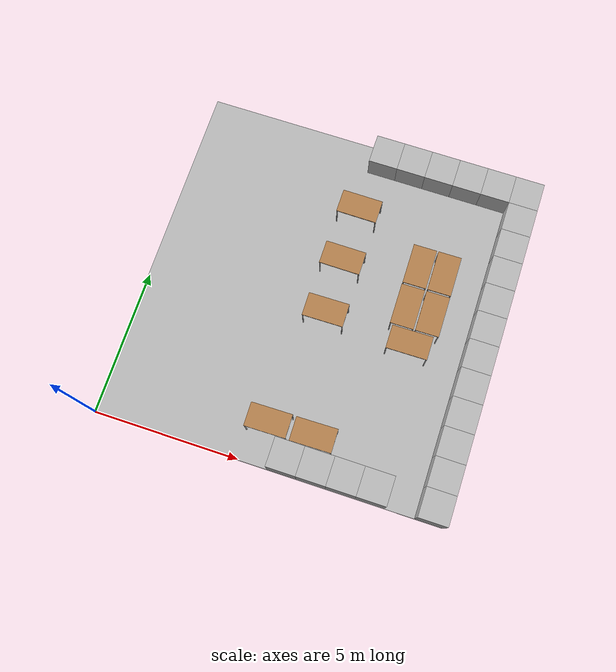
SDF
<sdf version="1.6">
 <world name="default">
  <model name="floor">
   <pose>5.94261 5.9862 -0.0625 0 -0 0</pose>
   <static>1</static>
   <link name="link">
    <collision name="collision"><geometry><box><size>12 12 0.125</size></box></geometry></collision>
    <visual name="visual"><geometry><box><size>12 12 0.125</size></box></geometry></visual>
   </link>
  </model>
  <model name="box_6_0">
   <pose>6.5 0.5 0.5 0 -0 0</pose>
   <static>1</static>
   <link name="link">
    <collision name="collision"><geometry><box><size>1 1 1</size></box></geometry></collision>
    <visual name="visual"><geometry><box><size>1 1 1</size></box></geometry></visual>
   </link>
  </model>
  <model name="box_6_11">
   <pose>6.5 11.5 0.5 0 -0 0</pose>
   <static>1</static>
   <link name="link">
    <collision name="collision"><geometry><box><size>1 1 1</size></box></geometry></collision>
    <visual name="visual"><geometry><box><size>1 1 1</size></box></geometry></visual>
   </link>
  </model>
  <model name="box_7_0">
   <pose>7.5 0.5 0.5 0 -0 0</pose>
   <static>1</static>
   <link name="link">
    <collision name="collision"><geometry><box><size>1 1 1</size></box></geometry></collision>
    <visual name="visual"><geometry><box><size>1 1 1</size></box></geometry></visual>
   </link>
  </model>
  <model name="box_7_11">
   <pose>7.5 11.5 0.5 0 -0 0</pose>
   <static>1</static>
   <link name="link">
    <collision name="collision"><geometry><box><size>1 1 1</size></box></geometry></collision>
    <visual name="visual"><geometry><box><size>1 1 1</size></box></geometry></visual>
   </link>
  </model>
  <model name="box_8_0">
   <pose>8.5 0.5 0.5 0 -0 0</pose>
   <static>1</static>
   <link name="link">
    <collision name="collision"><geometry><box><size>1 1 1</size></box></geometry></collision>
    <visual name="visual"><geometry><box><size>1 1 1</size></box></geometry></visual>
   </link>
  </model>
  <model name="box_8_11">
   <pose>8.5 11.5 0.5 0 -0 0</pose>
   <static>1</static>
   <link name="link">
    <collision name="collision"><geometry><box><size>1 1 1</size></box></geometry></collision>
    <visual name="visual"><geometry><box><size>1 1 1</size></box></geometry></visual>
   </link>
  </model>
  <model name="box_9_0">
   <pose>9.5 0.5 0.5 0 -0 0</pose>
   <static>1</static>
   <link name="link">
    <collision name="collision"><geometry><box><size>1 1 1</size></box></geometry></collision>
    <visual name="visual"><geometry><box><size>1 1 1</size></box></geometry></visual>
   </link>
  </model>
  <model name="box_9_11">
   <pose>9.5 11.5 0.5 0 -0 0</pose>
   <static>1</static>
   <link name="link">
    <collision name="collision"><geometry><box><size>1 1 1</size></box></geometry></collision>
    <visual name="visual"><geometry><box><size>1 1 1</size></box></geometry></visual>
   </link>
  </model>
  <model name="box_10_11">
   <pose>10.5 11.5 0.5 0 -0 0</pose>
   <static>1</static>
   <link name="link">
    <collision name="collision"><geometry><box><size>1 1 1</size></box></geometry></collision>
    <visual name="visual"><geometry><box><size>1 1 1</size></box></geometry></visual>
   </link>
  </model>
  <model name="box_11_0">
   <pose>11.5 0.5 0.5 0 -0 0</pose>
   <static>1</static>
   <link name="link">
    <collision name="collision"><geometry><box><size>1 1 1</size></box></geometry></collision>
    <visual name="visual"><geometry><box><size>1 1 1</size></box></geometry></visual>
   </link>
  </model>
  <model name="box_11_1">
   <pose>11.5 1.5 0.5 0 -0 0</pose>
   <static>1</static>
   <link name="link">
    <collision name="collision"><geometry><box><size>1 1 1</size></box></geometry></collision>
    <visual name="visual"><geometry><box><size>1 1 1</size></box></geometry></visual>
   </link>
  </model>
  <model name="box_11_2">
   <pose>11.5 2.5 0.5 0 -0 0</pose>
   <static>1</static>
   <link name="link">
    <collision name="collision"><geometry><box><size>1 1 1</size></box></geometry></collision>
    <visual name="visual"><geometry><box><size>1 1 1</size></box></geometry></visual>
   </link>
  </model>
  <model name="box_11_3">
   <pose>11.5 3.5 0.5 0 -0 0</pose>
   <static>1</static>
   <link name="link">
    <collision name="collision"><geometry><box><size>1 1 1</size></box></geometry></collision>
    <visual name="visual"><geometry><box><size>1 1 1</size></box></geometry></visual>
   </link>
  </model>
  <model name="box_11_4">
   <pose>11.5 4.5 0.5 0 -0 0</pose>
   <static>1</static>
   <link name="link">
    <collision name="collision"><geometry><box><size>1 1 1</size></box></geometry></collision>
    <visual name="visual"><geometry><box><size>1 1 1</size></box></geometry></visual>
   </link>
  </model>
  <model name="box_11_5">
   <pose>11.5 5.5 0.5 0 -0 0</pose>
   <static>1</static>
   <link name="link">
    <collision name="collision"><geometry><box><size>1 1 1</size></box></geometry></collision>
    <visual name="visual"><geometry><box><size>1 1 1</size></box></geometry></visual>
   </link>
  </model>
  <model name="box_11_6">
   <pose>11.5 6.5 0.5 0 -0 0</pose>
   <static>1</static>
   <link name="link">
    <collision name="collision"><geometry><box><size>1 1 1</size></box></geometry></collision>
    <visual name="visual"><geometry><box><size>1 1 1</size></box></geometry></visual>
   </link>
  </model>
  <model name="box_11_7">
   <pose>11.5 7.5 0.5 0 -0 0</pose>
   <static>1</static>
   <link name="link">
    <collision name="collision"><geometry><box><size>1 1 1</size></box></geometry></collision>
    <visual name="visual"><geometry><box><size>1 1 1</size></box></geometry></visual>
   </link>
  </model>
  <model name="box_11_8">
   <pose>11.5 8.5 0.5 0 -0 0</pose>
   <static>1</static>
   <link name="link">
    <collision name="collision"><geometry><box><size>1 1 1</size></box></geometry></collision>
    <visual name="visual"><geometry><box><size>1 1 1</size></box></geometry></visual>
   </link>
  </model>
  <model name="box_11_9">
   <pose>11.5 9.5 0.5 0 -0 0</pose>
   <static>1</static>
   <link name="link">
    <collision name="collision"><geometry><box><size>1 1 1</size></box></geometry></collision>
    <visual name="visual"><geometry><box><size>1 1 1</size></box></geometry></visual>
   </link>
  </model>
  <model name="box_11_10">
   <pose>11.5 10.5 0.5 0 -0 0</pose>
   <static>1</static>
   <link name="link">
    <collision name="collision"><geometry><box><size>1 1 1</size></box></geometry></collision>
    <visual name="visual"><geometry><box><size>1 1 1</size></box></geometry></visual>
   </link>
  </model>
  <model name="box_11_11">
   <pose>11.5 11.5 0.5 0 -0 0</pose>
   <static>1</static>
   <link name="link">
    <collision name="collision"><geometry><box><size>1 1 1</size></box></geometry></collision>
    <visual name="visual"><geometry><box><size>1 1 1</size></box></geometry></visual>
   </link>
  </model>
  <model name="table">
   <static>0</static>
   <link name="link">
    <collision name="surface">
     <pose>0 0 1 0 -0 0</pose>
     <geometry><box><size>1.5 0.8 0.03</size></box></geometry>
     <surface><friction><ode><mu>0.6</mu><mu2>0.6</mu2></ode></friction></surface>
    </collision>
    <visual name="visual1">
     <pose>0 0 1 0 -0 0</pose>
     <geometry><box><size>1.4 0.8 0.04</size></box></geometry>
     <material>
      <script><uri>file://media/materials/scripts/gazebo.material</uri><name>Gazebo/Wood</name></script>
     </material>
    </visual>
    <collision name="front_left_leg">
     <pose>0.68 0.38 0.5 0 -0 0</pose>
     <geometry><cylinder><radius>0.02</radius><length>1</length></cylinder></geometry>
    </collision>
    <visual name="front_left_leg">
     <pose>0.68 0.38 0.5 0 -0 0</pose>
     <geometry><cylinder><radius>0.02</radius><length>1</length></cylinder></geometry>
     <material>
      <script><uri>file://media/materials/scripts/gazebo.material</uri><name>Gazebo/Grey</name></script>
     </material>
    </visual>
    <collision name="front_right_leg">
     <pose>0.68 -0.38 0.5 0 -0 0</pose>
     <geometry><cylinder><radius>0.02</radius><length>1</length></cylinder></geometry>
    </collision>
    <visual name="front_right_leg">
     <pose>0.68 -0.38 0.5 0 -0 0</pose>
     <geometry><cylinder><radius>0.02</radius><length>1</length></cylinder></geometry>
     <material>
      <script><uri>file://media/materials/scripts/gazebo.material</uri><name>Gazebo/Grey</name></script>
     </material>
    </visual>
    <collision name="back_right_leg">
     <pose>-0.68 -0.38 0.5 0 -0 0</pose>
     <geometry><cylinder><radius>0.02</radius><length>1</length></cylinder></geometry>
    </collision>
    <visual name="back_right_leg">
     <pose>-0.68 -0.38 0.5 0 -0 0</pose>
     <geometry><cylinder><radius>0.02</radius><length>1</length></cylinder></geometry>
     <material>
      <script><uri>file://media/materials/scripts/gazebo.material</uri><name>Gazebo/Grey</name></script>
     </material>
    </visual>
    <collision name="back_left_leg">
     <pose>-0.68 0.38 0.5 0 -0 0</pose>
     <geometry><cylinder><radius>0.02</radius><length>1</length></cylinder></geometry>
    </collision>
    <visual name="back_left_leg">
     <pose>-0.68 0.38 0.5 0 -0 0</pose>
     <geometry><cylinder><radius>0.02</radius><length>1</length></cylinder></geometry>
     <material>
      <script><uri>file://media/materials/scripts/gazebo.material</uri><name>Gazebo/Grey</name></script>
     </material>
    </visual>
    <inertial>
     <inertia><ixx>1</ixx><ixy>0</ixy><ixz>0</ixz><iyy>1</iyy><iyz>0</iyz><izz>1</izz></inertia>
     <mass>1</mass>
    </inertial>
   </link>
   <pose>9.17846 5.24352 -7e-06 -0 -2e-06 0.011059</pose>
  </model>
  <model name="table_0">
   <static>0</static>
   <link name="link">
    <collision name="surface">
     <pose>0 0 1 0 -0 0</pose>
     <geometry><box><size>1.5 0.8 0.03</size></box></geometry>
     <surface><friction><ode><mu>0.6</mu><mu2>0.6</mu2></ode></friction></surface>
    </collision>
    <visual name="visual1">
     <pose>0 0 1 0 -0 0</pose>
     <geometry><box><size>1.4 0.8 0.04</size></box></geometry>
     <material>
      <script><uri>file://media/materials/scripts/gazebo.material</uri><name>Gazebo/Wood</name></script>
     </material>
    </visual>
    <collision name="front_left_leg">
     <pose>0.68 0.38 0.5 0 -0 0</pose>
     <geometry><cylinder><radius>0.02</radius><length>1</length></cylinder></geometry>
    </collision>
    <visual name="front_left_leg">
     <pose>0.68 0.38 0.5 0 -0 0</pose>
     <geometry><cylinder><radius>0.02</radius><length>1</length></cylinder></geometry>
     <material>
      <script><uri>file://media/materials/scripts/gazebo.material</uri><name>Gazebo/Grey</name></script>
     </material>
    </visual>
    <collision name="front_right_leg">
     <pose>0.68 -0.38 0.5 0 -0 0</pose>
     <geometry><cylinder><radius>0.02</radius><length>1</length></cylinder></geometry>
    </collision>
    <visual name="front_right_leg">
     <pose>0.68 -0.38 0.5 0 -0 0</pose>
     <geometry><cylinder><radius>0.02</radius><length>1</length></cylinder></geometry>
     <material>
      <script><uri>file://media/materials/scripts/gazebo.material</uri><name>Gazebo/Grey</name></script>
     </material>
    </visual>
    <collision name="back_right_leg">
     <pose>-0.68 -0.38 0.5 0 -0 0</pose>
     <geometry><cylinder><radius>0.02</radius><length>1</length></cylinder></geometry>
    </collision>
    <visual name="back_right_leg">
     <pose>-0.68 -0.38 0.5 0 -0 0</pose>
     <geometry><cylinder><radius>0.02</radius><length>1</length></cylinder></geometry>
     <material>
      <script><uri>file://media/materials/scripts/gazebo.material</uri><name>Gazebo/Grey</name></script>
     </material>
    </visual>
    <collision name="back_left_leg">
     <pose>-0.68 0.38 0.5 0 -0 0</pose>
     <geometry><cylinder><radius>0.02</radius><length>1</length></cylinder></geometry>
    </collision>
    <visual name="back_left_leg">
     <pose>-0.68 0.38 0.5 0 -0 0</pose>
     <geometry><cylinder><radius>0.02</radius><length>1</length></cylinder></geometry>
     <material>
      <script><uri>file://media/materials/scripts/gazebo.material</uri><name>Gazebo/Grey</name></script>
     </material>
    </visual>
    <inertial>
     <inertia><ixx>1</ixx><ixy>0</ixy><ixz>0</ixz><iyy>1</iyy><iyz>0</iyz><izz>1</izz></inertia>
     <mass>1</mass>
    </inertial>
   </link>
   <pose>9.62597 6.39854 -0.000245 0 0 -1.55974</pose>
  </model>
  <model name="table_0_clone">
   <static>0</static>
   <link name="link">
    <collision name="surface">
     <pose>0 0 1 0 -0 0</pose>
     <geometry><box><size>1.5 0.8 0.03</size></box></geometry>
     <surface><friction><ode><mu>0.6</mu><mu2>0.6</mu2></ode></friction></surface>
    </collision>
    <visual name="visual1">
     <pose>0 0 1 0 -0 0</pose>
     <geometry><box><size>1.4 0.8 0.04</size></box></geometry>
     <material>
      <script><uri>file://media/materials/scripts/gazebo.material</uri><name>Gazebo/Wood</name></script>
     </material>
    </visual>
    <collision name="front_left_leg">
     <pose>0.68 0.38 0.5 0 -0 0</pose>
     <geometry><cylinder><radius>0.02</radius><length>1</length></cylinder></geometry>
    </collision>
    <visual name="front_left_leg">
     <pose>0.68 0.38 0.5 0 -0 0</pose>
     <geometry><cylinder><radius>0.02</radius><length>1</length></cylinder></geometry>
     <material>
      <script><uri>file://media/materials/scripts/gazebo.material</uri><name>Gazebo/Grey</name></script>
     </material>
    </visual>
    <collision name="front_right_leg">
     <pose>0.68 -0.38 0.5 0 -0 0</pose>
     <geometry><cylinder><radius>0.02</radius><length>1</length></cylinder></geometry>
    </collision>
    <visual name="front_right_leg">
     <pose>0.68 -0.38 0.5 0 -0 0</pose>
     <geometry><cylinder><radius>0.02</radius><length>1</length></cylinder></geometry>
     <material>
      <script><uri>file://media/materials/scripts/gazebo.material</uri><name>Gazebo/Grey</name></script>
     </material>
    </visual>
    <collision name="back_right_leg">
     <pose>-0.68 -0.38 0.5 0 -0 0</pose>
     <geometry><cylinder><radius>0.02</radius><length>1</length></cylinder></geometry>
    </collision>
    <visual name="back_right_leg">
     <pose>-0.68 -0.38 0.5 0 -0 0</pose>
     <geometry><cylinder><radius>0.02</radius><length>1</length></cylinder></geometry>
     <material>
      <script><uri>file://media/materials/scripts/gazebo.material</uri><name>Gazebo/Grey</name></script>
     </material>
    </visual>
    <collision name="back_left_leg">
     <pose>-0.68 0.38 0.5 0 -0 0</pose>
     <geometry><cylinder><radius>0.02</radius><length>1</length></cylinder></geometry>
    </collision>
    <visual name="back_left_leg">
     <pose>-0.68 0.38 0.5 0 -0 0</pose>
     <geometry><cylinder><radius>0.02</radius><length>1</length></cylinder></geometry>
     <material>
      <script><uri>file://media/materials/scripts/gazebo.material</uri><name>Gazebo/Grey</name></script>
     </material>
    </visual>
    <inertial>
     <inertia><ixx>1</ixx><ixy>0</ixy><ixz>0</ixz><iyy>1</iyy><iyz>0</iyz><izz>1</izz></inertia>
     <mass>1</mass>
    </inertial>
   </link>
   <pose>8.76763 6.38905 -1e-06 0 -1e-06 -1.55973</pose>
  </model>
  <model name="table_0_clone_clone">
   <static>0</static>
   <link name="link">
    <collision name="surface">
     <pose>0 0 1 0 -0 0</pose>
     <geometry><box><size>1.5 0.8 0.03</size></box></geometry>
     <surface><friction><ode><mu>0.6</mu><mu2>0.6</mu2></ode></friction></surface>
    </collision>
    <visual name="visual1">
     <pose>0 0 1 0 -0 0</pose>
     <geometry><box><size>1.4 0.8 0.04</size></box></geometry>
     <material>
      <script><uri>file://media/materials/scripts/gazebo.material</uri><name>Gazebo/Wood</name></script>
     </material>
    </visual>
    <collision name="front_left_leg">
     <pose>0.68 0.38 0.5 0 -0 0</pose>
     <geometry><cylinder><radius>0.02</radius><length>1</length></cylinder></geometry>
    </collision>
    <visual name="front_left_leg">
     <pose>0.68 0.38 0.5 0 -0 0</pose>
     <geometry><cylinder><radius>0.02</radius><length>1</length></cylinder></geometry>
     <material>
      <script><uri>file://media/materials/scripts/gazebo.material</uri><name>Gazebo/Grey</name></script>
     </material>
    </visual>
    <collision name="front_right_leg">
     <pose>0.68 -0.38 0.5 0 -0 0</pose>
     <geometry><cylinder><radius>0.02</radius><length>1</length></cylinder></geometry>
    </collision>
    <visual name="front_right_leg">
     <pose>0.68 -0.38 0.5 0 -0 0</pose>
     <geometry><cylinder><radius>0.02</radius><length>1</length></cylinder></geometry>
     <material>
      <script><uri>file://media/materials/scripts/gazebo.material</uri><name>Gazebo/Grey</name></script>
     </material>
    </visual>
    <collision name="back_right_leg">
     <pose>-0.68 -0.38 0.5 0 -0 0</pose>
     <geometry><cylinder><radius>0.02</radius><length>1</length></cylinder></geometry>
    </collision>
    <visual name="back_right_leg">
     <pose>-0.68 -0.38 0.5 0 -0 0</pose>
     <geometry><cylinder><radius>0.02</radius><length>1</length></cylinder></geometry>
     <material>
      <script><uri>file://media/materials/scripts/gazebo.material</uri><name>Gazebo/Grey</name></script>
     </material>
    </visual>
    <collision name="back_left_leg">
     <pose>-0.68 0.38 0.5 0 -0 0</pose>
     <geometry><cylinder><radius>0.02</radius><length>1</length></cylinder></geometry>
    </collision>
    <visual name="back_left_leg">
     <pose>-0.68 0.38 0.5 0 -0 0</pose>
     <geometry><cylinder><radius>0.02</radius><length>1</length></cylinder></geometry>
     <material>
      <script><uri>file://media/materials/scripts/gazebo.material</uri><name>Gazebo/Grey</name></script>
     </material>
    </visual>
    <inertial>
     <inertia><ixx>1</ixx><ixy>0</ixy><ixz>0</ixz><iyy>1</iyy><iyz>0</iyz><izz>1</izz></inertia>
     <mass>1</mass>
    </inertial>
   </link>
   <pose>9.61633 7.82775 0.015104 3e-06 -0.021577 -1.55974</pose>
  </model>
  <model name="table_0_clone_clone_0">
   <static>0</static>
   <link name="link">
    <collision name="surface">
     <pose>0 0 1 0 -0 0</pose>
     <geometry><box><size>1.5 0.8 0.03</size></box></geometry>
     <surface><friction><ode><mu>0.6</mu><mu2>0.6</mu2></ode></friction></surface>
    </collision>
    <visual name="visual1">
     <pose>0 0 1 0 -0 0</pose>
     <geometry><box><size>1.4 0.8 0.04</size></box></geometry>
     <material>
      <script><uri>file://media/materials/scripts/gazebo.material</uri><name>Gazebo/Wood</name></script>
     </material>
    </visual>
    <collision name="front_left_leg">
     <pose>0.68 0.38 0.5 0 -0 0</pose>
     <geometry><cylinder><radius>0.02</radius><length>1</length></cylinder></geometry>
    </collision>
    <visual name="front_left_leg">
     <pose>0.68 0.38 0.5 0 -0 0</pose>
     <geometry><cylinder><radius>0.02</radius><length>1</length></cylinder></geometry>
     <material>
      <script><uri>file://media/materials/scripts/gazebo.material</uri><name>Gazebo/Grey</name></script>
     </material>
    </visual>
    <collision name="front_right_leg">
     <pose>0.68 -0.38 0.5 0 -0 0</pose>
     <geometry><cylinder><radius>0.02</radius><length>1</length></cylinder></geometry>
    </collision>
    <visual name="front_right_leg">
     <pose>0.68 -0.38 0.5 0 -0 0</pose>
     <geometry><cylinder><radius>0.02</radius><length>1</length></cylinder></geometry>
     <material>
      <script><uri>file://media/materials/scripts/gazebo.material</uri><name>Gazebo/Grey</name></script>
     </material>
    </visual>
    <collision name="back_right_leg">
     <pose>-0.68 -0.38 0.5 0 -0 0</pose>
     <geometry><cylinder><radius>0.02</radius><length>1</length></cylinder></geometry>
    </collision>
    <visual name="back_right_leg">
     <pose>-0.68 -0.38 0.5 0 -0 0</pose>
     <geometry><cylinder><radius>0.02</radius><length>1</length></cylinder></geometry>
     <material>
      <script><uri>file://media/materials/scripts/gazebo.material</uri><name>Gazebo/Grey</name></script>
     </material>
    </visual>
    <collision name="back_left_leg">
     <pose>-0.68 0.38 0.5 0 -0 0</pose>
     <geometry><cylinder><radius>0.02</radius><length>1</length></cylinder></geometry>
    </collision>
    <visual name="back_left_leg">
     <pose>-0.68 0.38 0.5 0 -0 0</pose>
     <geometry><cylinder><radius>0.02</radius><length>1</length></cylinder></geometry>
     <material>
      <script><uri>file://media/materials/scripts/gazebo.material</uri><name>Gazebo/Grey</name></script>
     </material>
    </visual>
    <inertial>
     <inertia><ixx>1</ixx><ixy>0</ixy><ixz>0</ixz><iyy>1</iyy><iyz>0</iyz><izz>1</izz></inertia>
     <mass>1</mass>
    </inertial>
   </link>
   <pose>8.76187 7.8183 0.015107 -0 -0.021583 -1.55974</pose>
  </model>
  <model name="table_clone">
   <static>0</static>
   <link name="link">
    <collision name="surface">
     <pose>0 0 1 0 -0 0</pose>
     <geometry><box><size>1.5 0.8 0.03</size></box></geometry>
     <surface><friction><ode><mu>0.6</mu><mu2>0.6</mu2></ode></friction></surface>
    </collision>
    <visual name="visual1">
     <pose>0 0 1 0 -0 0</pose>
     <geometry><box><size>1.4 0.8 0.04</size></box></geometry>
     <material>
      <script><uri>file://media/materials/scripts/gazebo.material</uri><name>Gazebo/Wood</name></script>
     </material>
    </visual>
    <collision name="front_left_leg">
     <pose>0.68 0.38 0.5 0 -0 0</pose>
     <geometry><cylinder><radius>0.02</radius><length>1</length></cylinder></geometry>
    </collision>
    <visual name="front_left_leg">
     <pose>0.68 0.38 0.5 0 -0 0</pose>
     <geometry><cylinder><radius>0.02</radius><length>1</length></cylinder></geometry>
     <material>
      <script><uri>file://media/materials/scripts/gazebo.material</uri><name>Gazebo/Grey</name></script>
     </material>
    </visual>
    <collision name="front_right_leg">
     <pose>0.68 -0.38 0.5 0 -0 0</pose>
     <geometry><cylinder><radius>0.02</radius><length>1</length></cylinder></geometry>
    </collision>
    <visual name="front_right_leg">
     <pose>0.68 -0.38 0.5 0 -0 0</pose>
     <geometry><cylinder><radius>0.02</radius><length>1</length></cylinder></geometry>
     <material>
      <script><uri>file://media/materials/scripts/gazebo.material</uri><name>Gazebo/Grey</name></script>
     </material>
    </visual>
    <collision name="back_right_leg">
     <pose>-0.68 -0.38 0.5 0 -0 0</pose>
     <geometry><cylinder><radius>0.02</radius><length>1</length></cylinder></geometry>
    </collision>
    <visual name="back_right_leg">
     <pose>-0.68 -0.38 0.5 0 -0 0</pose>
     <geometry><cylinder><radius>0.02</radius><length>1</length></cylinder></geometry>
     <material>
      <script><uri>file://media/materials/scripts/gazebo.material</uri><name>Gazebo/Grey</name></script>
     </material>
    </visual>
    <collision name="back_left_leg">
     <pose>-0.68 0.38 0.5 0 -0 0</pose>
     <geometry><cylinder><radius>0.02</radius><length>1</length></cylinder></geometry>
    </collision>
    <visual name="back_left_leg">
     <pose>-0.68 0.38 0.5 0 -0 0</pose>
     <geometry><cylinder><radius>0.02</radius><length>1</length></cylinder></geometry>
     <material>
      <script><uri>file://media/materials/scripts/gazebo.material</uri><name>Gazebo/Grey</name></script>
     </material>
    </visual>
    <inertial>
     <inertia><ixx>1</ixx><ixy>0</ixy><ixz>0</ixz><iyy>1</iyy><iyz>0</iyz><izz>1</izz></inertia>
     <mass>1</mass>
    </inertial>
   </link>
   <pose>6.23597 5.44554 0 0 -0 0.012441</pose>
  </model>
  <model name="table_clone_0_clone_0">
   <static>0</static>
   <link name="link">
    <collision name="surface">
     <pose>0 0 1 0 -0 0</pose>
     <geometry><box><size>1.5 0.8 0.03</size></box></geometry>
     <surface><friction><ode><mu>0.6</mu><mu2>0.6</mu2></ode></friction></surface>
    </collision>
    <visual name="visual1">
     <pose>0 0 1 0 -0 0</pose>
     <geometry><box><size>1.4 0.8 0.04</size></box></geometry>
     <material>
      <script><uri>file://media/materials/scripts/gazebo.material</uri><name>Gazebo/Wood</name></script>
     </material>
    </visual>
    <collision name="front_left_leg">
     <pose>0.68 0.38 0.5 0 -0 0</pose>
     <geometry><cylinder><radius>0.02</radius><length>1</length></cylinder></geometry>
    </collision>
    <visual name="front_left_leg">
     <pose>0.68 0.38 0.5 0 -0 0</pose>
     <geometry><cylinder><radius>0.02</radius><length>1</length></cylinder></geometry>
     <material>
      <script><uri>file://media/materials/scripts/gazebo.material</uri><name>Gazebo/Grey</name></script>
     </material>
    </visual>
    <collision name="front_right_leg">
     <pose>0.68 -0.38 0.5 0 -0 0</pose>
     <geometry><cylinder><radius>0.02</radius><length>1</length></cylinder></geometry>
    </collision>
    <visual name="front_right_leg">
     <pose>0.68 -0.38 0.5 0 -0 0</pose>
     <geometry><cylinder><radius>0.02</radius><length>1</length></cylinder></geometry>
     <material>
      <script><uri>file://media/materials/scripts/gazebo.material</uri><name>Gazebo/Grey</name></script>
     </material>
    </visual>
    <collision name="back_right_leg">
     <pose>-0.68 -0.38 0.5 0 -0 0</pose>
     <geometry><cylinder><radius>0.02</radius><length>1</length></cylinder></geometry>
    </collision>
    <visual name="back_right_leg">
     <pose>-0.68 -0.38 0.5 0 -0 0</pose>
     <geometry><cylinder><radius>0.02</radius><length>1</length></cylinder></geometry>
     <material>
      <script><uri>file://media/materials/scripts/gazebo.material</uri><name>Gazebo/Grey</name></script>
     </material>
    </visual>
    <collision name="back_left_leg">
     <pose>-0.68 0.38 0.5 0 -0 0</pose>
     <geometry><cylinder><radius>0.02</radius><length>1</length></cylinder></geometry>
    </collision>
    <visual name="back_left_leg">
     <pose>-0.68 0.38 0.5 0 -0 0</pose>
     <geometry><cylinder><radius>0.02</radius><length>1</length></cylinder></geometry>
     <material>
      <script><uri>file://media/materials/scripts/gazebo.material</uri><name>Gazebo/Grey</name></script>
     </material>
    </visual>
    <inertial>
     <inertia><ixx>1</ixx><ixy>0</ixy><ixz>0</ixz><iyy>1</iyy><iyz>0</iyz><izz>1</izz></inertia>
     <mass>1</mass>
    </inertial>
   </link>
   <pose>6.21494 7.34049 -3e-06 2e-06 -4e-06 -0.005891</pose>
  </model>
  <model name="table_clone_0_clone_2">
   <static>0</static>
   <link name="link">
    <collision name="surface">
     <pose>0 0 1 0 -0 0</pose>
     <geometry><box><size>1.5 0.8 0.03</size></box></geometry>
     <surface><friction><ode><mu>0.6</mu><mu2>0.6</mu2></ode></friction></surface>
    </collision>
    <visual name="visual1">
     <pose>0 0 1 0 -0 0</pose>
     <geometry><box><size>1.4 0.8 0.04</size></box></geometry>
     <material>
      <script><uri>file://media/materials/scripts/gazebo.material</uri><name>Gazebo/Wood</name></script>
     </material>
    </visual>
    <collision name="front_left_leg">
     <pose>0.68 0.38 0.5 0 -0 0</pose>
     <geometry><cylinder><radius>0.02</radius><length>1</length></cylinder></geometry>
    </collision>
    <visual name="front_left_leg">
     <pose>0.68 0.38 0.5 0 -0 0</pose>
     <geometry><cylinder><radius>0.02</radius><length>1</length></cylinder></geometry>
     <material>
      <script><uri>file://media/materials/scripts/gazebo.material</uri><name>Gazebo/Grey</name></script>
     </material>
    </visual>
    <collision name="front_right_leg">
     <pose>0.68 -0.38 0.5 0 -0 0</pose>
     <geometry><cylinder><radius>0.02</radius><length>1</length></cylinder></geometry>
    </collision>
    <visual name="front_right_leg">
     <pose>0.68 -0.38 0.5 0 -0 0</pose>
     <geometry><cylinder><radius>0.02</radius><length>1</length></cylinder></geometry>
     <material>
      <script><uri>file://media/materials/scripts/gazebo.material</uri><name>Gazebo/Grey</name></script>
     </material>
    </visual>
    <collision name="back_right_leg">
     <pose>-0.68 -0.38 0.5 0 -0 0</pose>
     <geometry><cylinder><radius>0.02</radius><length>1</length></cylinder></geometry>
    </collision>
    <visual name="back_right_leg">
     <pose>-0.68 -0.38 0.5 0 -0 0</pose>
     <geometry><cylinder><radius>0.02</radius><length>1</length></cylinder></geometry>
     <material>
      <script><uri>file://media/materials/scripts/gazebo.material</uri><name>Gazebo/Grey</name></script>
     </material>
    </visual>
    <collision name="back_left_leg">
     <pose>-0.68 0.38 0.5 0 -0 0</pose>
     <geometry><cylinder><radius>0.02</radius><length>1</length></cylinder></geometry>
    </collision>
    <visual name="back_left_leg">
     <pose>-0.68 0.38 0.5 0 -0 0</pose>
     <geometry><cylinder><radius>0.02</radius><length>1</length></cylinder></geometry>
     <material>
      <script><uri>file://media/materials/scripts/gazebo.material</uri><name>Gazebo/Grey</name></script>
     </material>
    </visual>
    <inertial>
     <inertia><ixx>1</ixx><ixy>0</ixy><ixz>0</ixz><iyy>1</iyy><iyz>0</iyz><izz>1</izz></inertia>
     <mass>1</mass>
    </inertial>
   </link>
   <pose>6.1956 9.27717 -2e-06 0 0 -0.006092</pose>
  </model>
  <model name="table_clone_0_clone_clone_1">
   <static>0</static>
   <link name="link">
    <collision name="surface">
     <pose>0 0 1 0 -0 0</pose>
     <geometry><box><size>1.5 0.8 0.03</size></box></geometry>
     <surface><friction><ode><mu>0.6</mu><mu2>0.6</mu2></ode></friction></surface>
    </collision>
    <visual name="visual1">
     <pose>0 0 1 0 -0 0</pose>
     <geometry><box><size>1.4 0.8 0.04</size></box></geometry>
     <material>
      <script><uri>file://media/materials/scripts/gazebo.material</uri><name>Gazebo/Wood</name></script>
     </material>
    </visual>
    <collision name="front_left_leg">
     <pose>0.68 0.38 0.5 0 -0 0</pose>
     <geometry><cylinder><radius>0.02</radius><length>1</length></cylinder></geometry>
    </collision>
    <visual name="front_left_leg">
     <pose>0.68 0.38 0.5 0 -0 0</pose>
     <geometry><cylinder><radius>0.02</radius><length>1</length></cylinder></geometry>
     <material>
      <script><uri>file://media/materials/scripts/gazebo.material</uri><name>Gazebo/Grey</name></script>
     </material>
    </visual>
    <collision name="front_right_leg">
     <pose>0.68 -0.38 0.5 0 -0 0</pose>
     <geometry><cylinder><radius>0.02</radius><length>1</length></cylinder></geometry>
    </collision>
    <visual name="front_right_leg">
     <pose>0.68 -0.38 0.5 0 -0 0</pose>
     <geometry><cylinder><radius>0.02</radius><length>1</length></cylinder></geometry>
     <material>
      <script><uri>file://media/materials/scripts/gazebo.material</uri><name>Gazebo/Grey</name></script>
     </material>
    </visual>
    <collision name="back_right_leg">
     <pose>-0.68 -0.38 0.5 0 -0 0</pose>
     <geometry><cylinder><radius>0.02</radius><length>1</length></cylinder></geometry>
    </collision>
    <visual name="back_right_leg">
     <pose>-0.68 -0.38 0.5 0 -0 0</pose>
     <geometry><cylinder><radius>0.02</radius><length>1</length></cylinder></geometry>
     <material>
      <script><uri>file://media/materials/scripts/gazebo.material</uri><name>Gazebo/Grey</name></script>
     </material>
    </visual>
    <collision name="back_left_leg">
     <pose>-0.68 0.38 0.5 0 -0 0</pose>
     <geometry><cylinder><radius>0.02</radius><length>1</length></cylinder></geometry>
    </collision>
    <visual name="back_left_leg">
     <pose>-0.68 0.38 0.5 0 -0 0</pose>
     <geometry><cylinder><radius>0.02</radius><length>1</length></cylinder></geometry>
     <material>
      <script><uri>file://media/materials/scripts/gazebo.material</uri><name>Gazebo/Grey</name></script>
     </material>
    </visual>
    <inertial>
     <inertia><ixx>1</ixx><ixy>0</ixy><ixz>0</ixz><iyy>1</iyy><iyz>0</iyz><izz>1</izz></inertia>
     <mass>1</mass>
    </inertial>
   </link>
   <pose>5.62535 1.41066 -6.4e-05 1e-06 1e-05 0.014273</pose>
  </model>
  <model name="table_clone_0_clone_clone_2">
   <static>0</static>
   <link name="link">
    <collision name="surface">
     <pose>0 0 1 0 -0 0</pose>
     <geometry><box><size>1.5 0.8 0.03</size></box></geometry>
     <surface><friction><ode><mu>0.6</mu><mu2>0.6</mu2></ode></friction></surface>
    </collision>
    <visual name="visual1">
     <pose>0 0 1 0 -0 0</pose>
     <geometry><box><size>1.4 0.8 0.04</size></box></geometry>
     <material>
      <script><uri>file://media/materials/scripts/gazebo.material</uri><name>Gazebo/Wood</name></script>
     </material>
    </visual>
    <collision name="front_left_leg">
     <pose>0.68 0.38 0.5 0 -0 0</pose>
     <geometry><cylinder><radius>0.02</radius><length>1</length></cylinder></geometry>
    </collision>
    <visual name="front_left_leg">
     <pose>0.68 0.38 0.5 0 -0 0</pose>
     <geometry><cylinder><radius>0.02</radius><length>1</length></cylinder></geometry>
     <material>
      <script><uri>file://media/materials/scripts/gazebo.material</uri><name>Gazebo/Grey</name></script>
     </material>
    </visual>
    <collision name="front_right_leg">
     <pose>0.68 -0.38 0.5 0 -0 0</pose>
     <geometry><cylinder><radius>0.02</radius><length>1</length></cylinder></geometry>
    </collision>
    <visual name="front_right_leg">
     <pose>0.68 -0.38 0.5 0 -0 0</pose>
     <geometry><cylinder><radius>0.02</radius><length>1</length></cylinder></geometry>
     <material>
      <script><uri>file://media/materials/scripts/gazebo.material</uri><name>Gazebo/Grey</name></script>
     </material>
    </visual>
    <collision name="back_right_leg">
     <pose>-0.68 -0.38 0.5 0 -0 0</pose>
     <geometry><cylinder><radius>0.02</radius><length>1</length></cylinder></geometry>
    </collision>
    <visual name="back_right_leg">
     <pose>-0.68 -0.38 0.5 0 -0 0</pose>
     <geometry><cylinder><radius>0.02</radius><length>1</length></cylinder></geometry>
     <material>
      <script><uri>file://media/materials/scripts/gazebo.material</uri><name>Gazebo/Grey</name></script>
     </material>
    </visual>
    <collision name="back_left_leg">
     <pose>-0.68 0.38 0.5 0 -0 0</pose>
     <geometry><cylinder><radius>0.02</radius><length>1</length></cylinder></geometry>
    </collision>
    <visual name="back_left_leg">
     <pose>-0.68 0.38 0.5 0 -0 0</pose>
     <geometry><cylinder><radius>0.02</radius><length>1</length></cylinder></geometry>
     <material>
      <script><uri>file://media/materials/scripts/gazebo.material</uri><name>Gazebo/Grey</name></script>
     </material>
    </visual>
    <inertial>
     <inertia><ixx>1</ixx><ixy>0</ixy><ixz>0</ixz><iyy>1</iyy><iyz>0</iyz><izz>1</izz></inertia>
     <mass>1</mass>
    </inertial>
   </link>
   <pose>7.14978 1.4174 -1e-05 0 -0 0.016887</pose>
  </model>
 </world>
</sdf>
